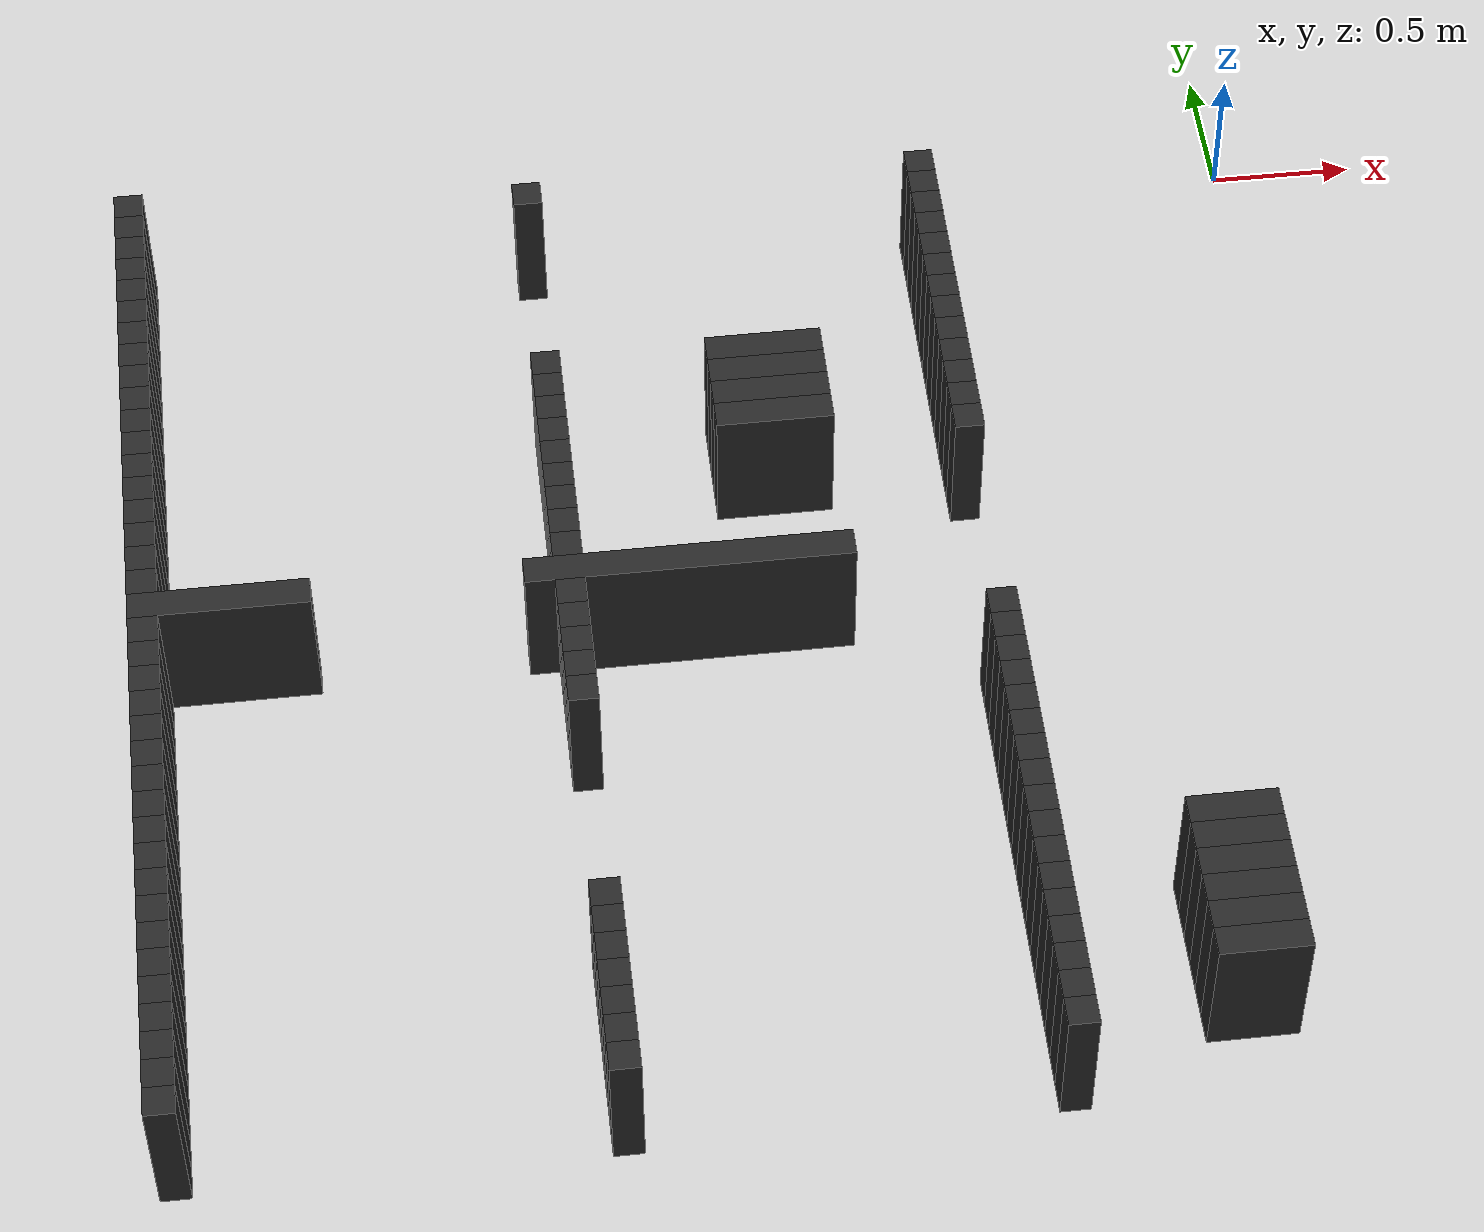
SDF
<sdf version="1.6">
 <world name="stress_maze_world">
  <include><uri>model://sun</uri></include>
  <include><uri>model://ground_plane</uri></include>
  <model name="wall_001_000">
   <static>true</static>
   <pose>-3.95000 -3.85000 0.25 0 0 0</pose>
   <link name="link">
    <collision name="collision"><geometry><box><size>0.10000 0.10000 0.5</size></box></geometry></collision>
    <visual name="visual">
     <geometry><box><size>0.10000 0.10000 0.5</size></box></geometry>
     <material><ambient>0.12 0.12 0.12 1</ambient><diffuse>0.15 0.15 0.15 1</diffuse></material>
    </visual>
   </link>
  </model>
  <model name="wall_001_014">
   <static>true</static>
   <pose>-2.55000 -3.85000 0.25 0 0 0</pose>
   <link name="link">
    <collision name="collision"><geometry><box><size>0.10000 0.10000 0.5</size></box></geometry></collision>
    <visual name="visual">
     <geometry><box><size>0.10000 0.10000 0.5</size></box></geometry>
     <material><ambient>0.12 0.12 0.12 1</ambient><diffuse>0.15 0.15 0.15 1</diffuse></material>
    </visual>
   </link>
  </model>
  <model name="wall_001_028">
   <static>true</static>
   <pose>-1.15000 -3.85000 0.25 0 0 0</pose>
   <link name="link">
    <collision name="collision"><geometry><box><size>0.10000 0.10000 0.5</size></box></geometry></collision>
    <visual name="visual">
     <geometry><box><size>0.10000 0.10000 0.5</size></box></geometry>
     <material><ambient>0.12 0.12 0.12 1</ambient><diffuse>0.15 0.15 0.15 1</diffuse></material>
    </visual>
   </link>
  </model>
  <model name="wall_002_000">
   <static>true</static>
   <pose>-3.95000 -3.75000 0.25 0 0 0</pose>
   <link name="link">
    <collision name="collision"><geometry><box><size>0.10000 0.10000 0.5</size></box></geometry></collision>
    <visual name="visual">
     <geometry><box><size>0.10000 0.10000 0.5</size></box></geometry>
     <material><ambient>0.12 0.12 0.12 1</ambient><diffuse>0.15 0.15 0.15 1</diffuse></material>
    </visual>
   </link>
  </model>
  <model name="wall_002_014">
   <static>true</static>
   <pose>-2.55000 -3.75000 0.25 0 0 0</pose>
   <link name="link">
    <collision name="collision"><geometry><box><size>0.10000 0.10000 0.5</size></box></geometry></collision>
    <visual name="visual">
     <geometry><box><size>0.10000 0.10000 0.5</size></box></geometry>
     <material><ambient>0.12 0.12 0.12 1</ambient><diffuse>0.15 0.15 0.15 1</diffuse></material>
    </visual>
   </link>
  </model>
  <model name="wall_002_028">
   <static>true</static>
   <pose>-1.15000 -3.75000 0.25 0 0 0</pose>
   <link name="link">
    <collision name="collision"><geometry><box><size>0.10000 0.10000 0.5</size></box></geometry></collision>
    <visual name="visual">
     <geometry><box><size>0.10000 0.10000 0.5</size></box></geometry>
     <material><ambient>0.12 0.12 0.12 1</ambient><diffuse>0.15 0.15 0.15 1</diffuse></material>
    </visual>
   </link>
  </model>
  <model name="wall_003_000">
   <static>true</static>
   <pose>-3.95000 -3.65000 0.25 0 0 0</pose>
   <link name="link">
    <collision name="collision"><geometry><box><size>0.10000 0.10000 0.5</size></box></geometry></collision>
    <visual name="visual">
     <geometry><box><size>0.10000 0.10000 0.5</size></box></geometry>
     <material><ambient>0.12 0.12 0.12 1</ambient><diffuse>0.15 0.15 0.15 1</diffuse></material>
    </visual>
   </link>
  </model>
  <model name="wall_003_014">
   <static>true</static>
   <pose>-2.55000 -3.65000 0.25 0 0 0</pose>
   <link name="link">
    <collision name="collision"><geometry><box><size>0.10000 0.10000 0.5</size></box></geometry></collision>
    <visual name="visual">
     <geometry><box><size>0.10000 0.10000 0.5</size></box></geometry>
     <material><ambient>0.12 0.12 0.12 1</ambient><diffuse>0.15 0.15 0.15 1</diffuse></material>
    </visual>
   </link>
  </model>
  <model name="wall_003_028">
   <static>true</static>
   <pose>-1.15000 -3.65000 0.25 0 0 0</pose>
   <link name="link">
    <collision name="collision"><geometry><box><size>0.10000 0.10000 0.5</size></box></geometry></collision>
    <visual name="visual">
     <geometry><box><size>0.10000 0.10000 0.5</size></box></geometry>
     <material><ambient>0.12 0.12 0.12 1</ambient><diffuse>0.15 0.15 0.15 1</diffuse></material>
    </visual>
   </link>
  </model>
  <model name="wall_003_033">
   <static>true</static>
   <pose>-0.55000 -3.65000 0.25 0 0 0</pose>
   <link name="link">
    <collision name="collision"><geometry><box><size>0.30000 0.10000 0.5</size></box></geometry></collision>
    <visual name="visual">
     <geometry><box><size>0.30000 0.10000 0.5</size></box></geometry>
     <material><ambient>0.12 0.12 0.12 1</ambient><diffuse>0.15 0.15 0.15 1</diffuse></material>
    </visual>
   </link>
  </model>
  <model name="wall_004_000">
   <static>true</static>
   <pose>-3.95000 -3.55000 0.25 0 0 0</pose>
   <link name="link">
    <collision name="collision"><geometry><box><size>0.10000 0.10000 0.5</size></box></geometry></collision>
    <visual name="visual">
     <geometry><box><size>0.10000 0.10000 0.5</size></box></geometry>
     <material><ambient>0.12 0.12 0.12 1</ambient><diffuse>0.15 0.15 0.15 1</diffuse></material>
    </visual>
   </link>
  </model>
  <model name="wall_004_014">
   <static>true</static>
   <pose>-2.55000 -3.55000 0.25 0 0 0</pose>
   <link name="link">
    <collision name="collision"><geometry><box><size>0.10000 0.10000 0.5</size></box></geometry></collision>
    <visual name="visual">
     <geometry><box><size>0.10000 0.10000 0.5</size></box></geometry>
     <material><ambient>0.12 0.12 0.12 1</ambient><diffuse>0.15 0.15 0.15 1</diffuse></material>
    </visual>
   </link>
  </model>
  <model name="wall_004_028">
   <static>true</static>
   <pose>-1.15000 -3.55000 0.25 0 0 0</pose>
   <link name="link">
    <collision name="collision"><geometry><box><size>0.10000 0.10000 0.5</size></box></geometry></collision>
    <visual name="visual">
     <geometry><box><size>0.10000 0.10000 0.5</size></box></geometry>
     <material><ambient>0.12 0.12 0.12 1</ambient><diffuse>0.15 0.15 0.15 1</diffuse></material>
    </visual>
   </link>
  </model>
  <model name="wall_004_033">
   <static>true</static>
   <pose>-0.55000 -3.55000 0.25 0 0 0</pose>
   <link name="link">
    <collision name="collision"><geometry><box><size>0.30000 0.10000 0.5</size></box></geometry></collision>
    <visual name="visual">
     <geometry><box><size>0.30000 0.10000 0.5</size></box></geometry>
     <material><ambient>0.12 0.12 0.12 1</ambient><diffuse>0.15 0.15 0.15 1</diffuse></material>
    </visual>
   </link>
  </model>
  <model name="wall_005_000">
   <static>true</static>
   <pose>-3.95000 -3.45000 0.25 0 0 0</pose>
   <link name="link">
    <collision name="collision"><geometry><box><size>0.10000 0.10000 0.5</size></box></geometry></collision>
    <visual name="visual">
     <geometry><box><size>0.10000 0.10000 0.5</size></box></geometry>
     <material><ambient>0.12 0.12 0.12 1</ambient><diffuse>0.15 0.15 0.15 1</diffuse></material>
    </visual>
   </link>
  </model>
  <model name="wall_005_014">
   <static>true</static>
   <pose>-2.55000 -3.45000 0.25 0 0 0</pose>
   <link name="link">
    <collision name="collision"><geometry><box><size>0.10000 0.10000 0.5</size></box></geometry></collision>
    <visual name="visual">
     <geometry><box><size>0.10000 0.10000 0.5</size></box></geometry>
     <material><ambient>0.12 0.12 0.12 1</ambient><diffuse>0.15 0.15 0.15 1</diffuse></material>
    </visual>
   </link>
  </model>
  <model name="wall_005_028">
   <static>true</static>
   <pose>-1.15000 -3.45000 0.25 0 0 0</pose>
   <link name="link">
    <collision name="collision"><geometry><box><size>0.10000 0.10000 0.5</size></box></geometry></collision>
    <visual name="visual">
     <geometry><box><size>0.10000 0.10000 0.5</size></box></geometry>
     <material><ambient>0.12 0.12 0.12 1</ambient><diffuse>0.15 0.15 0.15 1</diffuse></material>
    </visual>
   </link>
  </model>
  <model name="wall_005_033">
   <static>true</static>
   <pose>-0.55000 -3.45000 0.25 0 0 0</pose>
   <link name="link">
    <collision name="collision"><geometry><box><size>0.30000 0.10000 0.5</size></box></geometry></collision>
    <visual name="visual">
     <geometry><box><size>0.30000 0.10000 0.5</size></box></geometry>
     <material><ambient>0.12 0.12 0.12 1</ambient><diffuse>0.15 0.15 0.15 1</diffuse></material>
    </visual>
   </link>
  </model>
  <model name="wall_006_000">
   <static>true</static>
   <pose>-3.95000 -3.35000 0.25 0 0 0</pose>
   <link name="link">
    <collision name="collision"><geometry><box><size>0.10000 0.10000 0.5</size></box></geometry></collision>
    <visual name="visual">
     <geometry><box><size>0.10000 0.10000 0.5</size></box></geometry>
     <material><ambient>0.12 0.12 0.12 1</ambient><diffuse>0.15 0.15 0.15 1</diffuse></material>
    </visual>
   </link>
  </model>
  <model name="wall_006_014">
   <static>true</static>
   <pose>-2.55000 -3.35000 0.25 0 0 0</pose>
   <link name="link">
    <collision name="collision"><geometry><box><size>0.10000 0.10000 0.5</size></box></geometry></collision>
    <visual name="visual">
     <geometry><box><size>0.10000 0.10000 0.5</size></box></geometry>
     <material><ambient>0.12 0.12 0.12 1</ambient><diffuse>0.15 0.15 0.15 1</diffuse></material>
    </visual>
   </link>
  </model>
  <model name="wall_006_028">
   <static>true</static>
   <pose>-1.15000 -3.35000 0.25 0 0 0</pose>
   <link name="link">
    <collision name="collision"><geometry><box><size>0.10000 0.10000 0.5</size></box></geometry></collision>
    <visual name="visual">
     <geometry><box><size>0.10000 0.10000 0.5</size></box></geometry>
     <material><ambient>0.12 0.12 0.12 1</ambient><diffuse>0.15 0.15 0.15 1</diffuse></material>
    </visual>
   </link>
  </model>
  <model name="wall_006_033">
   <static>true</static>
   <pose>-0.55000 -3.35000 0.25 0 0 0</pose>
   <link name="link">
    <collision name="collision"><geometry><box><size>0.30000 0.10000 0.5</size></box></geometry></collision>
    <visual name="visual">
     <geometry><box><size>0.30000 0.10000 0.5</size></box></geometry>
     <material><ambient>0.12 0.12 0.12 1</ambient><diffuse>0.15 0.15 0.15 1</diffuse></material>
    </visual>
   </link>
  </model>
  <model name="wall_007_000">
   <static>true</static>
   <pose>-3.95000 -3.25000 0.25 0 0 0</pose>
   <link name="link">
    <collision name="collision"><geometry><box><size>0.10000 0.10000 0.5</size></box></geometry></collision>
    <visual name="visual">
     <geometry><box><size>0.10000 0.10000 0.5</size></box></geometry>
     <material><ambient>0.12 0.12 0.12 1</ambient><diffuse>0.15 0.15 0.15 1</diffuse></material>
    </visual>
   </link>
  </model>
  <model name="wall_007_014">
   <static>true</static>
   <pose>-2.55000 -3.25000 0.25 0 0 0</pose>
   <link name="link">
    <collision name="collision"><geometry><box><size>0.10000 0.10000 0.5</size></box></geometry></collision>
    <visual name="visual">
     <geometry><box><size>0.10000 0.10000 0.5</size></box></geometry>
     <material><ambient>0.12 0.12 0.12 1</ambient><diffuse>0.15 0.15 0.15 1</diffuse></material>
    </visual>
   </link>
  </model>
  <model name="wall_007_028">
   <static>true</static>
   <pose>-1.15000 -3.25000 0.25 0 0 0</pose>
   <link name="link">
    <collision name="collision"><geometry><box><size>0.10000 0.10000 0.5</size></box></geometry></collision>
    <visual name="visual">
     <geometry><box><size>0.10000 0.10000 0.5</size></box></geometry>
     <material><ambient>0.12 0.12 0.12 1</ambient><diffuse>0.15 0.15 0.15 1</diffuse></material>
    </visual>
   </link>
  </model>
  <model name="wall_007_033">
   <static>true</static>
   <pose>-0.55000 -3.25000 0.25 0 0 0</pose>
   <link name="link">
    <collision name="collision"><geometry><box><size>0.30000 0.10000 0.5</size></box></geometry></collision>
    <visual name="visual">
     <geometry><box><size>0.30000 0.10000 0.5</size></box></geometry>
     <material><ambient>0.12 0.12 0.12 1</ambient><diffuse>0.15 0.15 0.15 1</diffuse></material>
    </visual>
   </link>
  </model>
  <model name="wall_008_000">
   <static>true</static>
   <pose>-3.95000 -3.15000 0.25 0 0 0</pose>
   <link name="link">
    <collision name="collision"><geometry><box><size>0.10000 0.10000 0.5</size></box></geometry></collision>
    <visual name="visual">
     <geometry><box><size>0.10000 0.10000 0.5</size></box></geometry>
     <material><ambient>0.12 0.12 0.12 1</ambient><diffuse>0.15 0.15 0.15 1</diffuse></material>
    </visual>
   </link>
  </model>
  <model name="wall_008_028">
   <static>true</static>
   <pose>-1.15000 -3.15000 0.25 0 0 0</pose>
   <link name="link">
    <collision name="collision"><geometry><box><size>0.10000 0.10000 0.5</size></box></geometry></collision>
    <visual name="visual">
     <geometry><box><size>0.10000 0.10000 0.5</size></box></geometry>
     <material><ambient>0.12 0.12 0.12 1</ambient><diffuse>0.15 0.15 0.15 1</diffuse></material>
    </visual>
   </link>
  </model>
  <model name="wall_008_033">
   <static>true</static>
   <pose>-0.55000 -3.15000 0.25 0 0 0</pose>
   <link name="link">
    <collision name="collision"><geometry><box><size>0.30000 0.10000 0.5</size></box></geometry></collision>
    <visual name="visual">
     <geometry><box><size>0.30000 0.10000 0.5</size></box></geometry>
     <material><ambient>0.12 0.12 0.12 1</ambient><diffuse>0.15 0.15 0.15 1</diffuse></material>
    </visual>
   </link>
  </model>
  <model name="wall_009_000">
   <static>true</static>
   <pose>-3.95000 -3.05000 0.25 0 0 0</pose>
   <link name="link">
    <collision name="collision"><geometry><box><size>0.10000 0.10000 0.5</size></box></geometry></collision>
    <visual name="visual">
     <geometry><box><size>0.10000 0.10000 0.5</size></box></geometry>
     <material><ambient>0.12 0.12 0.12 1</ambient><diffuse>0.15 0.15 0.15 1</diffuse></material>
    </visual>
   </link>
  </model>
  <model name="wall_009_028">
   <static>true</static>
   <pose>-1.15000 -3.05000 0.25 0 0 0</pose>
   <link name="link">
    <collision name="collision"><geometry><box><size>0.10000 0.10000 0.5</size></box></geometry></collision>
    <visual name="visual">
     <geometry><box><size>0.10000 0.10000 0.5</size></box></geometry>
     <material><ambient>0.12 0.12 0.12 1</ambient><diffuse>0.15 0.15 0.15 1</diffuse></material>
    </visual>
   </link>
  </model>
  <model name="wall_010_000">
   <static>true</static>
   <pose>-3.95000 -2.95000 0.25 0 0 0</pose>
   <link name="link">
    <collision name="collision"><geometry><box><size>0.10000 0.10000 0.5</size></box></geometry></collision>
    <visual name="visual">
     <geometry><box><size>0.10000 0.10000 0.5</size></box></geometry>
     <material><ambient>0.12 0.12 0.12 1</ambient><diffuse>0.15 0.15 0.15 1</diffuse></material>
    </visual>
   </link>
  </model>
  <model name="wall_010_028">
   <static>true</static>
   <pose>-1.15000 -2.95000 0.25 0 0 0</pose>
   <link name="link">
    <collision name="collision"><geometry><box><size>0.10000 0.10000 0.5</size></box></geometry></collision>
    <visual name="visual">
     <geometry><box><size>0.10000 0.10000 0.5</size></box></geometry>
     <material><ambient>0.12 0.12 0.12 1</ambient><diffuse>0.15 0.15 0.15 1</diffuse></material>
    </visual>
   </link>
  </model>
  <model name="wall_011_000">
   <static>true</static>
   <pose>-3.95000 -2.85000 0.25 0 0 0</pose>
   <link name="link">
    <collision name="collision"><geometry><box><size>0.10000 0.10000 0.5</size></box></geometry></collision>
    <visual name="visual">
     <geometry><box><size>0.10000 0.10000 0.5</size></box></geometry>
     <material><ambient>0.12 0.12 0.12 1</ambient><diffuse>0.15 0.15 0.15 1</diffuse></material>
    </visual>
   </link>
  </model>
  <model name="wall_011_028">
   <static>true</static>
   <pose>-1.15000 -2.85000 0.25 0 0 0</pose>
   <link name="link">
    <collision name="collision"><geometry><box><size>0.10000 0.10000 0.5</size></box></geometry></collision>
    <visual name="visual">
     <geometry><box><size>0.10000 0.10000 0.5</size></box></geometry>
     <material><ambient>0.12 0.12 0.12 1</ambient><diffuse>0.15 0.15 0.15 1</diffuse></material>
    </visual>
   </link>
  </model>
  <model name="wall_012_000">
   <static>true</static>
   <pose>-3.95000 -2.75000 0.25 0 0 0</pose>
   <link name="link">
    <collision name="collision"><geometry><box><size>0.10000 0.10000 0.5</size></box></geometry></collision>
    <visual name="visual">
     <geometry><box><size>0.10000 0.10000 0.5</size></box></geometry>
     <material><ambient>0.12 0.12 0.12 1</ambient><diffuse>0.15 0.15 0.15 1</diffuse></material>
    </visual>
   </link>
  </model>
  <model name="wall_012_028">
   <static>true</static>
   <pose>-1.15000 -2.75000 0.25 0 0 0</pose>
   <link name="link">
    <collision name="collision"><geometry><box><size>0.10000 0.10000 0.5</size></box></geometry></collision>
    <visual name="visual">
     <geometry><box><size>0.10000 0.10000 0.5</size></box></geometry>
     <material><ambient>0.12 0.12 0.12 1</ambient><diffuse>0.15 0.15 0.15 1</diffuse></material>
    </visual>
   </link>
  </model>
  <model name="wall_013_000">
   <static>true</static>
   <pose>-3.95000 -2.65000 0.25 0 0 0</pose>
   <link name="link">
    <collision name="collision"><geometry><box><size>0.10000 0.10000 0.5</size></box></geometry></collision>
    <visual name="visual">
     <geometry><box><size>0.10000 0.10000 0.5</size></box></geometry>
     <material><ambient>0.12 0.12 0.12 1</ambient><diffuse>0.15 0.15 0.15 1</diffuse></material>
    </visual>
   </link>
  </model>
  <model name="wall_013_028">
   <static>true</static>
   <pose>-1.15000 -2.65000 0.25 0 0 0</pose>
   <link name="link">
    <collision name="collision"><geometry><box><size>0.10000 0.10000 0.5</size></box></geometry></collision>
    <visual name="visual">
     <geometry><box><size>0.10000 0.10000 0.5</size></box></geometry>
     <material><ambient>0.12 0.12 0.12 1</ambient><diffuse>0.15 0.15 0.15 1</diffuse></material>
    </visual>
   </link>
  </model>
  <model name="wall_014_000">
   <static>true</static>
   <pose>-3.95000 -2.55000 0.25 0 0 0</pose>
   <link name="link">
    <collision name="collision"><geometry><box><size>0.10000 0.10000 0.5</size></box></geometry></collision>
    <visual name="visual">
     <geometry><box><size>0.10000 0.10000 0.5</size></box></geometry>
     <material><ambient>0.12 0.12 0.12 1</ambient><diffuse>0.15 0.15 0.15 1</diffuse></material>
    </visual>
   </link>
  </model>
  <model name="wall_014_028">
   <static>true</static>
   <pose>-1.15000 -2.55000 0.25 0 0 0</pose>
   <link name="link">
    <collision name="collision"><geometry><box><size>0.10000 0.10000 0.5</size></box></geometry></collision>
    <visual name="visual">
     <geometry><box><size>0.10000 0.10000 0.5</size></box></geometry>
     <material><ambient>0.12 0.12 0.12 1</ambient><diffuse>0.15 0.15 0.15 1</diffuse></material>
    </visual>
   </link>
  </model>
  <model name="wall_015_000">
   <static>true</static>
   <pose>-3.95000 -2.45000 0.25 0 0 0</pose>
   <link name="link">
    <collision name="collision"><geometry><box><size>0.10000 0.10000 0.5</size></box></geometry></collision>
    <visual name="visual">
     <geometry><box><size>0.10000 0.10000 0.5</size></box></geometry>
     <material><ambient>0.12 0.12 0.12 1</ambient><diffuse>0.15 0.15 0.15 1</diffuse></material>
    </visual>
   </link>
  </model>
  <model name="wall_015_014">
   <static>true</static>
   <pose>-2.55000 -2.45000 0.25 0 0 0</pose>
   <link name="link">
    <collision name="collision"><geometry><box><size>0.10000 0.10000 0.5</size></box></geometry></collision>
    <visual name="visual">
     <geometry><box><size>0.10000 0.10000 0.5</size></box></geometry>
     <material><ambient>0.12 0.12 0.12 1</ambient><diffuse>0.15 0.15 0.15 1</diffuse></material>
    </visual>
   </link>
  </model>
  <model name="wall_015_028">
   <static>true</static>
   <pose>-1.15000 -2.45000 0.25 0 0 0</pose>
   <link name="link">
    <collision name="collision"><geometry><box><size>0.10000 0.10000 0.5</size></box></geometry></collision>
    <visual name="visual">
     <geometry><box><size>0.10000 0.10000 0.5</size></box></geometry>
     <material><ambient>0.12 0.12 0.12 1</ambient><diffuse>0.15 0.15 0.15 1</diffuse></material>
    </visual>
   </link>
  </model>
  <model name="wall_016_000">
   <static>true</static>
   <pose>-3.95000 -2.35000 0.25 0 0 0</pose>
   <link name="link">
    <collision name="collision"><geometry><box><size>0.10000 0.10000 0.5</size></box></geometry></collision>
    <visual name="visual">
     <geometry><box><size>0.10000 0.10000 0.5</size></box></geometry>
     <material><ambient>0.12 0.12 0.12 1</ambient><diffuse>0.15 0.15 0.15 1</diffuse></material>
    </visual>
   </link>
  </model>
  <model name="wall_016_014">
   <static>true</static>
   <pose>-2.55000 -2.35000 0.25 0 0 0</pose>
   <link name="link">
    <collision name="collision"><geometry><box><size>0.10000 0.10000 0.5</size></box></geometry></collision>
    <visual name="visual">
     <geometry><box><size>0.10000 0.10000 0.5</size></box></geometry>
     <material><ambient>0.12 0.12 0.12 1</ambient><diffuse>0.15 0.15 0.15 1</diffuse></material>
    </visual>
   </link>
  </model>
  <model name="wall_016_028">
   <static>true</static>
   <pose>-1.15000 -2.35000 0.25 0 0 0</pose>
   <link name="link">
    <collision name="collision"><geometry><box><size>0.10000 0.10000 0.5</size></box></geometry></collision>
    <visual name="visual">
     <geometry><box><size>0.10000 0.10000 0.5</size></box></geometry>
     <material><ambient>0.12 0.12 0.12 1</ambient><diffuse>0.15 0.15 0.15 1</diffuse></material>
    </visual>
   </link>
  </model>
  <model name="wall_017_000">
   <static>true</static>
   <pose>-3.95000 -2.25000 0.25 0 0 0</pose>
   <link name="link">
    <collision name="collision"><geometry><box><size>0.10000 0.10000 0.5</size></box></geometry></collision>
    <visual name="visual">
     <geometry><box><size>0.10000 0.10000 0.5</size></box></geometry>
     <material><ambient>0.12 0.12 0.12 1</ambient><diffuse>0.15 0.15 0.15 1</diffuse></material>
    </visual>
   </link>
  </model>
  <model name="wall_017_014">
   <static>true</static>
   <pose>-2.55000 -2.25000 0.25 0 0 0</pose>
   <link name="link">
    <collision name="collision"><geometry><box><size>0.10000 0.10000 0.5</size></box></geometry></collision>
    <visual name="visual">
     <geometry><box><size>0.10000 0.10000 0.5</size></box></geometry>
     <material><ambient>0.12 0.12 0.12 1</ambient><diffuse>0.15 0.15 0.15 1</diffuse></material>
    </visual>
   </link>
  </model>
  <model name="wall_017_028">
   <static>true</static>
   <pose>-1.15000 -2.25000 0.25 0 0 0</pose>
   <link name="link">
    <collision name="collision"><geometry><box><size>0.10000 0.10000 0.5</size></box></geometry></collision>
    <visual name="visual">
     <geometry><box><size>0.10000 0.10000 0.5</size></box></geometry>
     <material><ambient>0.12 0.12 0.12 1</ambient><diffuse>0.15 0.15 0.15 1</diffuse></material>
    </visual>
   </link>
  </model>
  <model name="wall_018_000">
   <static>true</static>
   <pose>-3.95000 -2.15000 0.25 0 0 0</pose>
   <link name="link">
    <collision name="collision"><geometry><box><size>0.10000 0.10000 0.5</size></box></geometry></collision>
    <visual name="visual">
     <geometry><box><size>0.10000 0.10000 0.5</size></box></geometry>
     <material><ambient>0.12 0.12 0.12 1</ambient><diffuse>0.15 0.15 0.15 1</diffuse></material>
    </visual>
   </link>
  </model>
  <model name="wall_018_014">
   <static>true</static>
   <pose>-2.55000 -2.15000 0.25 0 0 0</pose>
   <link name="link">
    <collision name="collision"><geometry><box><size>0.10000 0.10000 0.5</size></box></geometry></collision>
    <visual name="visual">
     <geometry><box><size>0.10000 0.10000 0.5</size></box></geometry>
     <material><ambient>0.12 0.12 0.12 1</ambient><diffuse>0.15 0.15 0.15 1</diffuse></material>
    </visual>
   </link>
  </model>
  <model name="wall_019_000">
   <static>true</static>
   <pose>-3.95000 -2.05000 0.25 0 0 0</pose>
   <link name="link">
    <collision name="collision"><geometry><box><size>0.10000 0.10000 0.5</size></box></geometry></collision>
    <visual name="visual">
     <geometry><box><size>0.10000 0.10000 0.5</size></box></geometry>
     <material><ambient>0.12 0.12 0.12 1</ambient><diffuse>0.15 0.15 0.15 1</diffuse></material>
    </visual>
   </link>
  </model>
  <model name="wall_019_014">
   <static>true</static>
   <pose>-2.55000 -2.05000 0.25 0 0 0</pose>
   <link name="link">
    <collision name="collision"><geometry><box><size>0.10000 0.10000 0.5</size></box></geometry></collision>
    <visual name="visual">
     <geometry><box><size>0.10000 0.10000 0.5</size></box></geometry>
     <material><ambient>0.12 0.12 0.12 1</ambient><diffuse>0.15 0.15 0.15 1</diffuse></material>
    </visual>
   </link>
  </model>
  <model name="wall_020_000">
   <static>true</static>
   <pose>-3.70000 -1.95000 0.25 0 0 0</pose>
   <link name="link">
    <collision name="collision"><geometry><box><size>0.60000 0.10000 0.5</size></box></geometry></collision>
    <visual name="visual">
     <geometry><box><size>0.60000 0.10000 0.5</size></box></geometry>
     <material><ambient>0.12 0.12 0.12 1</ambient><diffuse>0.15 0.15 0.15 1</diffuse></material>
    </visual>
   </link>
  </model>
  <model name="wall_020_013">
   <static>true</static>
   <pose>-2.15000 -1.95000 0.25 0 0 0</pose>
   <link name="link">
    <collision name="collision"><geometry><box><size>1.10000 0.10000 0.5</size></box></geometry></collision>
    <visual name="visual">
     <geometry><box><size>1.10000 0.10000 0.5</size></box></geometry>
     <material><ambient>0.12 0.12 0.12 1</ambient><diffuse>0.15 0.15 0.15 1</diffuse></material>
    </visual>
   </link>
  </model>
  <model name="wall_021_000">
   <static>true</static>
   <pose>-3.95000 -1.85000 0.25 0 0 0</pose>
   <link name="link">
    <collision name="collision"><geometry><box><size>0.10000 0.10000 0.5</size></box></geometry></collision>
    <visual name="visual">
     <geometry><box><size>0.10000 0.10000 0.5</size></box></geometry>
     <material><ambient>0.12 0.12 0.12 1</ambient><diffuse>0.15 0.15 0.15 1</diffuse></material>
    </visual>
   </link>
  </model>
  <model name="wall_021_014">
   <static>true</static>
   <pose>-2.55000 -1.85000 0.25 0 0 0</pose>
   <link name="link">
    <collision name="collision"><geometry><box><size>0.10000 0.10000 0.5</size></box></geometry></collision>
    <visual name="visual">
     <geometry><box><size>0.10000 0.10000 0.5</size></box></geometry>
     <material><ambient>0.12 0.12 0.12 1</ambient><diffuse>0.15 0.15 0.15 1</diffuse></material>
    </visual>
   </link>
  </model>
  <model name="wall_022_000">
   <static>true</static>
   <pose>-3.95000 -1.75000 0.25 0 0 0</pose>
   <link name="link">
    <collision name="collision"><geometry><box><size>0.10000 0.10000 0.5</size></box></geometry></collision>
    <visual name="visual">
     <geometry><box><size>0.10000 0.10000 0.5</size></box></geometry>
     <material><ambient>0.12 0.12 0.12 1</ambient><diffuse>0.15 0.15 0.15 1</diffuse></material>
    </visual>
   </link>
  </model>
  <model name="wall_022_014">
   <static>true</static>
   <pose>-2.55000 -1.75000 0.25 0 0 0</pose>
   <link name="link">
    <collision name="collision"><geometry><box><size>0.10000 0.10000 0.5</size></box></geometry></collision>
    <visual name="visual">
     <geometry><box><size>0.10000 0.10000 0.5</size></box></geometry>
     <material><ambient>0.12 0.12 0.12 1</ambient><diffuse>0.15 0.15 0.15 1</diffuse></material>
    </visual>
   </link>
  </model>
  <model name="wall_023_000">
   <static>true</static>
   <pose>-3.95000 -1.65000 0.25 0 0 0</pose>
   <link name="link">
    <collision name="collision"><geometry><box><size>0.10000 0.10000 0.5</size></box></geometry></collision>
    <visual name="visual">
     <geometry><box><size>0.10000 0.10000 0.5</size></box></geometry>
     <material><ambient>0.12 0.12 0.12 1</ambient><diffuse>0.15 0.15 0.15 1</diffuse></material>
    </visual>
   </link>
  </model>
  <model name="wall_023_014">
   <static>true</static>
   <pose>-2.55000 -1.65000 0.25 0 0 0</pose>
   <link name="link">
    <collision name="collision"><geometry><box><size>0.10000 0.10000 0.5</size></box></geometry></collision>
    <visual name="visual">
     <geometry><box><size>0.10000 0.10000 0.5</size></box></geometry>
     <material><ambient>0.12 0.12 0.12 1</ambient><diffuse>0.15 0.15 0.15 1</diffuse></material>
    </visual>
   </link>
  </model>
  <model name="wall_024_000">
   <static>true</static>
   <pose>-3.95000 -1.55000 0.25 0 0 0</pose>
   <link name="link">
    <collision name="collision"><geometry><box><size>0.10000 0.10000 0.5</size></box></geometry></collision>
    <visual name="visual">
     <geometry><box><size>0.10000 0.10000 0.5</size></box></geometry>
     <material><ambient>0.12 0.12 0.12 1</ambient><diffuse>0.15 0.15 0.15 1</diffuse></material>
    </visual>
   </link>
  </model>
  <model name="wall_024_014">
   <static>true</static>
   <pose>-2.55000 -1.55000 0.25 0 0 0</pose>
   <link name="link">
    <collision name="collision"><geometry><box><size>0.10000 0.10000 0.5</size></box></geometry></collision>
    <visual name="visual">
     <geometry><box><size>0.10000 0.10000 0.5</size></box></geometry>
     <material><ambient>0.12 0.12 0.12 1</ambient><diffuse>0.15 0.15 0.15 1</diffuse></material>
    </visual>
   </link>
  </model>
  <model name="wall_025_000">
   <static>true</static>
   <pose>-3.95000 -1.45000 0.25 0 0 0</pose>
   <link name="link">
    <collision name="collision"><geometry><box><size>0.10000 0.10000 0.5</size></box></geometry></collision>
    <visual name="visual">
     <geometry><box><size>0.10000 0.10000 0.5</size></box></geometry>
     <material><ambient>0.12 0.12 0.12 1</ambient><diffuse>0.15 0.15 0.15 1</diffuse></material>
    </visual>
   </link>
  </model>
  <model name="wall_025_014">
   <static>true</static>
   <pose>-2.55000 -1.45000 0.25 0 0 0</pose>
   <link name="link">
    <collision name="collision"><geometry><box><size>0.10000 0.10000 0.5</size></box></geometry></collision>
    <visual name="visual">
     <geometry><box><size>0.10000 0.10000 0.5</size></box></geometry>
     <material><ambient>0.12 0.12 0.12 1</ambient><diffuse>0.15 0.15 0.15 1</diffuse></material>
    </visual>
   </link>
  </model>
  <model name="wall_025_028">
   <static>true</static>
   <pose>-1.15000 -1.45000 0.25 0 0 0</pose>
   <link name="link">
    <collision name="collision"><geometry><box><size>0.10000 0.10000 0.5</size></box></geometry></collision>
    <visual name="visual">
     <geometry><box><size>0.10000 0.10000 0.5</size></box></geometry>
     <material><ambient>0.12 0.12 0.12 1</ambient><diffuse>0.15 0.15 0.15 1</diffuse></material>
    </visual>
   </link>
  </model>
  <model name="wall_026_000">
   <static>true</static>
   <pose>-3.95000 -1.35000 0.25 0 0 0</pose>
   <link name="link">
    <collision name="collision"><geometry><box><size>0.10000 0.10000 0.5</size></box></geometry></collision>
    <visual name="visual">
     <geometry><box><size>0.10000 0.10000 0.5</size></box></geometry>
     <material><ambient>0.12 0.12 0.12 1</ambient><diffuse>0.15 0.15 0.15 1</diffuse></material>
    </visual>
   </link>
  </model>
  <model name="wall_026_014">
   <static>true</static>
   <pose>-2.55000 -1.35000 0.25 0 0 0</pose>
   <link name="link">
    <collision name="collision"><geometry><box><size>0.10000 0.10000 0.5</size></box></geometry></collision>
    <visual name="visual">
     <geometry><box><size>0.10000 0.10000 0.5</size></box></geometry>
     <material><ambient>0.12 0.12 0.12 1</ambient><diffuse>0.15 0.15 0.15 1</diffuse></material>
    </visual>
   </link>
  </model>
  <model name="wall_026_020">
   <static>true</static>
   <pose>-1.80000 -1.35000 0.25 0 0 0</pose>
   <link name="link">
    <collision name="collision"><geometry><box><size>0.40000 0.10000 0.5</size></box></geometry></collision>
    <visual name="visual">
     <geometry><box><size>0.40000 0.10000 0.5</size></box></geometry>
     <material><ambient>0.12 0.12 0.12 1</ambient><diffuse>0.15 0.15 0.15 1</diffuse></material>
    </visual>
   </link>
  </model>
  <model name="wall_026_028">
   <static>true</static>
   <pose>-1.15000 -1.35000 0.25 0 0 0</pose>
   <link name="link">
    <collision name="collision"><geometry><box><size>0.10000 0.10000 0.5</size></box></geometry></collision>
    <visual name="visual">
     <geometry><box><size>0.10000 0.10000 0.5</size></box></geometry>
     <material><ambient>0.12 0.12 0.12 1</ambient><diffuse>0.15 0.15 0.15 1</diffuse></material>
    </visual>
   </link>
  </model>
  <model name="wall_027_000">
   <static>true</static>
   <pose>-3.95000 -1.25000 0.25 0 0 0</pose>
   <link name="link">
    <collision name="collision"><geometry><box><size>0.10000 0.10000 0.5</size></box></geometry></collision>
    <visual name="visual">
     <geometry><box><size>0.10000 0.10000 0.5</size></box></geometry>
     <material><ambient>0.12 0.12 0.12 1</ambient><diffuse>0.15 0.15 0.15 1</diffuse></material>
    </visual>
   </link>
  </model>
  <model name="wall_027_014">
   <static>true</static>
   <pose>-2.55000 -1.25000 0.25 0 0 0</pose>
   <link name="link">
    <collision name="collision"><geometry><box><size>0.10000 0.10000 0.5</size></box></geometry></collision>
    <visual name="visual">
     <geometry><box><size>0.10000 0.10000 0.5</size></box></geometry>
     <material><ambient>0.12 0.12 0.12 1</ambient><diffuse>0.15 0.15 0.15 1</diffuse></material>
    </visual>
   </link>
  </model>
  <model name="wall_027_020">
   <static>true</static>
   <pose>-1.80000 -1.25000 0.25 0 0 0</pose>
   <link name="link">
    <collision name="collision"><geometry><box><size>0.40000 0.10000 0.5</size></box></geometry></collision>
    <visual name="visual">
     <geometry><box><size>0.40000 0.10000 0.5</size></box></geometry>
     <material><ambient>0.12 0.12 0.12 1</ambient><diffuse>0.15 0.15 0.15 1</diffuse></material>
    </visual>
   </link>
  </model>
  <model name="wall_027_028">
   <static>true</static>
   <pose>-1.15000 -1.25000 0.25 0 0 0</pose>
   <link name="link">
    <collision name="collision"><geometry><box><size>0.10000 0.10000 0.5</size></box></geometry></collision>
    <visual name="visual">
     <geometry><box><size>0.10000 0.10000 0.5</size></box></geometry>
     <material><ambient>0.12 0.12 0.12 1</ambient><diffuse>0.15 0.15 0.15 1</diffuse></material>
    </visual>
   </link>
  </model>
  <model name="wall_028_000">
   <static>true</static>
   <pose>-3.95000 -1.15000 0.25 0 0 0</pose>
   <link name="link">
    <collision name="collision"><geometry><box><size>0.10000 0.10000 0.5</size></box></geometry></collision>
    <visual name="visual">
     <geometry><box><size>0.10000 0.10000 0.5</size></box></geometry>
     <material><ambient>0.12 0.12 0.12 1</ambient><diffuse>0.15 0.15 0.15 1</diffuse></material>
    </visual>
   </link>
  </model>
  <model name="wall_028_014">
   <static>true</static>
   <pose>-2.55000 -1.15000 0.25 0 0 0</pose>
   <link name="link">
    <collision name="collision"><geometry><box><size>0.10000 0.10000 0.5</size></box></geometry></collision>
    <visual name="visual">
     <geometry><box><size>0.10000 0.10000 0.5</size></box></geometry>
     <material><ambient>0.12 0.12 0.12 1</ambient><diffuse>0.15 0.15 0.15 1</diffuse></material>
    </visual>
   </link>
  </model>
  <model name="wall_028_020">
   <static>true</static>
   <pose>-1.80000 -1.15000 0.25 0 0 0</pose>
   <link name="link">
    <collision name="collision"><geometry><box><size>0.40000 0.10000 0.5</size></box></geometry></collision>
    <visual name="visual">
     <geometry><box><size>0.40000 0.10000 0.5</size></box></geometry>
     <material><ambient>0.12 0.12 0.12 1</ambient><diffuse>0.15 0.15 0.15 1</diffuse></material>
    </visual>
   </link>
  </model>
  <model name="wall_028_028">
   <static>true</static>
   <pose>-1.15000 -1.15000 0.25 0 0 0</pose>
   <link name="link">
    <collision name="collision"><geometry><box><size>0.10000 0.10000 0.5</size></box></geometry></collision>
    <visual name="visual">
     <geometry><box><size>0.10000 0.10000 0.5</size></box></geometry>
     <material><ambient>0.12 0.12 0.12 1</ambient><diffuse>0.15 0.15 0.15 1</diffuse></material>
    </visual>
   </link>
  </model>
  <model name="wall_029_000">
   <static>true</static>
   <pose>-3.95000 -1.05000 0.25 0 0 0</pose>
   <link name="link">
    <collision name="collision"><geometry><box><size>0.10000 0.10000 0.5</size></box></geometry></collision>
    <visual name="visual">
     <geometry><box><size>0.10000 0.10000 0.5</size></box></geometry>
     <material><ambient>0.12 0.12 0.12 1</ambient><diffuse>0.15 0.15 0.15 1</diffuse></material>
    </visual>
   </link>
  </model>
  <model name="wall_029_014">
   <static>true</static>
   <pose>-2.55000 -1.05000 0.25 0 0 0</pose>
   <link name="link">
    <collision name="collision"><geometry><box><size>0.10000 0.10000 0.5</size></box></geometry></collision>
    <visual name="visual">
     <geometry><box><size>0.10000 0.10000 0.5</size></box></geometry>
     <material><ambient>0.12 0.12 0.12 1</ambient><diffuse>0.15 0.15 0.15 1</diffuse></material>
    </visual>
   </link>
  </model>
  <model name="wall_029_020">
   <static>true</static>
   <pose>-1.80000 -1.05000 0.25 0 0 0</pose>
   <link name="link">
    <collision name="collision"><geometry><box><size>0.40000 0.10000 0.5</size></box></geometry></collision>
    <visual name="visual">
     <geometry><box><size>0.40000 0.10000 0.5</size></box></geometry>
     <material><ambient>0.12 0.12 0.12 1</ambient><diffuse>0.15 0.15 0.15 1</diffuse></material>
    </visual>
   </link>
  </model>
  <model name="wall_029_028">
   <static>true</static>
   <pose>-1.15000 -1.05000 0.25 0 0 0</pose>
   <link name="link">
    <collision name="collision"><geometry><box><size>0.10000 0.10000 0.5</size></box></geometry></collision>
    <visual name="visual">
     <geometry><box><size>0.10000 0.10000 0.5</size></box></geometry>
     <material><ambient>0.12 0.12 0.12 1</ambient><diffuse>0.15 0.15 0.15 1</diffuse></material>
    </visual>
   </link>
  </model>
  <model name="wall_030_000">
   <static>true</static>
   <pose>-3.95000 -0.95000 0.25 0 0 0</pose>
   <link name="link">
    <collision name="collision"><geometry><box><size>0.10000 0.10000 0.5</size></box></geometry></collision>
    <visual name="visual">
     <geometry><box><size>0.10000 0.10000 0.5</size></box></geometry>
     <material><ambient>0.12 0.12 0.12 1</ambient><diffuse>0.15 0.15 0.15 1</diffuse></material>
    </visual>
   </link>
  </model>
  <model name="wall_030_028">
   <static>true</static>
   <pose>-1.15000 -0.95000 0.25 0 0 0</pose>
   <link name="link">
    <collision name="collision"><geometry><box><size>0.10000 0.10000 0.5</size></box></geometry></collision>
    <visual name="visual">
     <geometry><box><size>0.10000 0.10000 0.5</size></box></geometry>
     <material><ambient>0.12 0.12 0.12 1</ambient><diffuse>0.15 0.15 0.15 1</diffuse></material>
    </visual>
   </link>
  </model>
  <model name="wall_031_000">
   <static>true</static>
   <pose>-3.95000 -0.85000 0.25 0 0 0</pose>
   <link name="link">
    <collision name="collision"><geometry><box><size>0.10000 0.10000 0.5</size></box></geometry></collision>
    <visual name="visual">
     <geometry><box><size>0.10000 0.10000 0.5</size></box></geometry>
     <material><ambient>0.12 0.12 0.12 1</ambient><diffuse>0.15 0.15 0.15 1</diffuse></material>
    </visual>
   </link>
  </model>
  <model name="wall_031_028">
   <static>true</static>
   <pose>-1.15000 -0.85000 0.25 0 0 0</pose>
   <link name="link">
    <collision name="collision"><geometry><box><size>0.10000 0.10000 0.5</size></box></geometry></collision>
    <visual name="visual">
     <geometry><box><size>0.10000 0.10000 0.5</size></box></geometry>
     <material><ambient>0.12 0.12 0.12 1</ambient><diffuse>0.15 0.15 0.15 1</diffuse></material>
    </visual>
   </link>
  </model>
  <model name="wall_032_000">
   <static>true</static>
   <pose>-3.95000 -0.75000 0.25 0 0 0</pose>
   <link name="link">
    <collision name="collision"><geometry><box><size>0.10000 0.10000 0.5</size></box></geometry></collision>
    <visual name="visual">
     <geometry><box><size>0.10000 0.10000 0.5</size></box></geometry>
     <material><ambient>0.12 0.12 0.12 1</ambient><diffuse>0.15 0.15 0.15 1</diffuse></material>
    </visual>
   </link>
  </model>
  <model name="wall_032_028">
   <static>true</static>
   <pose>-1.15000 -0.75000 0.25 0 0 0</pose>
   <link name="link">
    <collision name="collision"><geometry><box><size>0.10000 0.10000 0.5</size></box></geometry></collision>
    <visual name="visual">
     <geometry><box><size>0.10000 0.10000 0.5</size></box></geometry>
     <material><ambient>0.12 0.12 0.12 1</ambient><diffuse>0.15 0.15 0.15 1</diffuse></material>
    </visual>
   </link>
  </model>
  <model name="wall_033_000">
   <static>true</static>
   <pose>-3.95000 -0.65000 0.25 0 0 0</pose>
   <link name="link">
    <collision name="collision"><geometry><box><size>0.10000 0.10000 0.5</size></box></geometry></collision>
    <visual name="visual">
     <geometry><box><size>0.10000 0.10000 0.5</size></box></geometry>
     <material><ambient>0.12 0.12 0.12 1</ambient><diffuse>0.15 0.15 0.15 1</diffuse></material>
    </visual>
   </link>
  </model>
  <model name="wall_033_028">
   <static>true</static>
   <pose>-1.15000 -0.65000 0.25 0 0 0</pose>
   <link name="link">
    <collision name="collision"><geometry><box><size>0.10000 0.10000 0.5</size></box></geometry></collision>
    <visual name="visual">
     <geometry><box><size>0.10000 0.10000 0.5</size></box></geometry>
     <material><ambient>0.12 0.12 0.12 1</ambient><diffuse>0.15 0.15 0.15 1</diffuse></material>
    </visual>
   </link>
  </model>
  <model name="wall_034_000">
   <static>true</static>
   <pose>-3.95000 -0.55000 0.25 0 0 0</pose>
   <link name="link">
    <collision name="collision"><geometry><box><size>0.10000 0.10000 0.5</size></box></geometry></collision>
    <visual name="visual">
     <geometry><box><size>0.10000 0.10000 0.5</size></box></geometry>
     <material><ambient>0.12 0.12 0.12 1</ambient><diffuse>0.15 0.15 0.15 1</diffuse></material>
    </visual>
   </link>
  </model>
  <model name="wall_034_028">
   <static>true</static>
   <pose>-1.15000 -0.55000 0.25 0 0 0</pose>
   <link name="link">
    <collision name="collision"><geometry><box><size>0.10000 0.10000 0.5</size></box></geometry></collision>
    <visual name="visual">
     <geometry><box><size>0.10000 0.10000 0.5</size></box></geometry>
     <material><ambient>0.12 0.12 0.12 1</ambient><diffuse>0.15 0.15 0.15 1</diffuse></material>
    </visual>
   </link>
  </model>
  <model name="wall_035_000">
   <static>true</static>
   <pose>-3.95000 -0.45000 0.25 0 0 0</pose>
   <link name="link">
    <collision name="collision"><geometry><box><size>0.10000 0.10000 0.5</size></box></geometry></collision>
    <visual name="visual">
     <geometry><box><size>0.10000 0.10000 0.5</size></box></geometry>
     <material><ambient>0.12 0.12 0.12 1</ambient><diffuse>0.15 0.15 0.15 1</diffuse></material>
    </visual>
   </link>
  </model>
  <model name="wall_035_028">
   <static>true</static>
   <pose>-1.15000 -0.45000 0.25 0 0 0</pose>
   <link name="link">
    <collision name="collision"><geometry><box><size>0.10000 0.10000 0.5</size></box></geometry></collision>
    <visual name="visual">
     <geometry><box><size>0.10000 0.10000 0.5</size></box></geometry>
     <material><ambient>0.12 0.12 0.12 1</ambient><diffuse>0.15 0.15 0.15 1</diffuse></material>
    </visual>
   </link>
  </model>
  <model name="wall_036_000">
   <static>true</static>
   <pose>-3.95000 -0.35000 0.25 0 0 0</pose>
   <link name="link">
    <collision name="collision"><geometry><box><size>0.10000 0.10000 0.5</size></box></geometry></collision>
    <visual name="visual">
     <geometry><box><size>0.10000 0.10000 0.5</size></box></geometry>
     <material><ambient>0.12 0.12 0.12 1</ambient><diffuse>0.15 0.15 0.15 1</diffuse></material>
    </visual>
   </link>
  </model>
  <model name="wall_036_028">
   <static>true</static>
   <pose>-1.15000 -0.35000 0.25 0 0 0</pose>
   <link name="link">
    <collision name="collision"><geometry><box><size>0.10000 0.10000 0.5</size></box></geometry></collision>
    <visual name="visual">
     <geometry><box><size>0.10000 0.10000 0.5</size></box></geometry>
     <material><ambient>0.12 0.12 0.12 1</ambient><diffuse>0.15 0.15 0.15 1</diffuse></material>
    </visual>
   </link>
  </model>
  <model name="wall_037_000">
   <static>true</static>
   <pose>-3.95000 -0.25000 0.25 0 0 0</pose>
   <link name="link">
    <collision name="collision"><geometry><box><size>0.10000 0.10000 0.5</size></box></geometry></collision>
    <visual name="visual">
     <geometry><box><size>0.10000 0.10000 0.5</size></box></geometry>
     <material><ambient>0.12 0.12 0.12 1</ambient><diffuse>0.15 0.15 0.15 1</diffuse></material>
    </visual>
   </link>
  </model>
  <model name="wall_037_014">
   <static>true</static>
   <pose>-2.55000 -0.25000 0.25 0 0 0</pose>
   <link name="link">
    <collision name="collision"><geometry><box><size>0.10000 0.10000 0.5</size></box></geometry></collision>
    <visual name="visual">
     <geometry><box><size>0.10000 0.10000 0.5</size></box></geometry>
     <material><ambient>0.12 0.12 0.12 1</ambient><diffuse>0.15 0.15 0.15 1</diffuse></material>
    </visual>
   </link>
  </model>
  <model name="wall_037_028">
   <static>true</static>
   <pose>-1.15000 -0.25000 0.25 0 0 0</pose>
   <link name="link">
    <collision name="collision"><geometry><box><size>0.10000 0.10000 0.5</size></box></geometry></collision>
    <visual name="visual">
     <geometry><box><size>0.10000 0.10000 0.5</size></box></geometry>
     <material><ambient>0.12 0.12 0.12 1</ambient><diffuse>0.15 0.15 0.15 1</diffuse></material>
    </visual>
   </link>
  </model>
  <model name="wall_038_000">
   <static>true</static>
   <pose>-3.95000 -0.15000 0.25 0 0 0</pose>
   <link name="link">
    <collision name="collision"><geometry><box><size>0.10000 0.10000 0.5</size></box></geometry></collision>
    <visual name="visual">
     <geometry><box><size>0.10000 0.10000 0.5</size></box></geometry>
     <material><ambient>0.12 0.12 0.12 1</ambient><diffuse>0.15 0.15 0.15 1</diffuse></material>
    </visual>
   </link>
  </model>
 </world>
</sdf>
